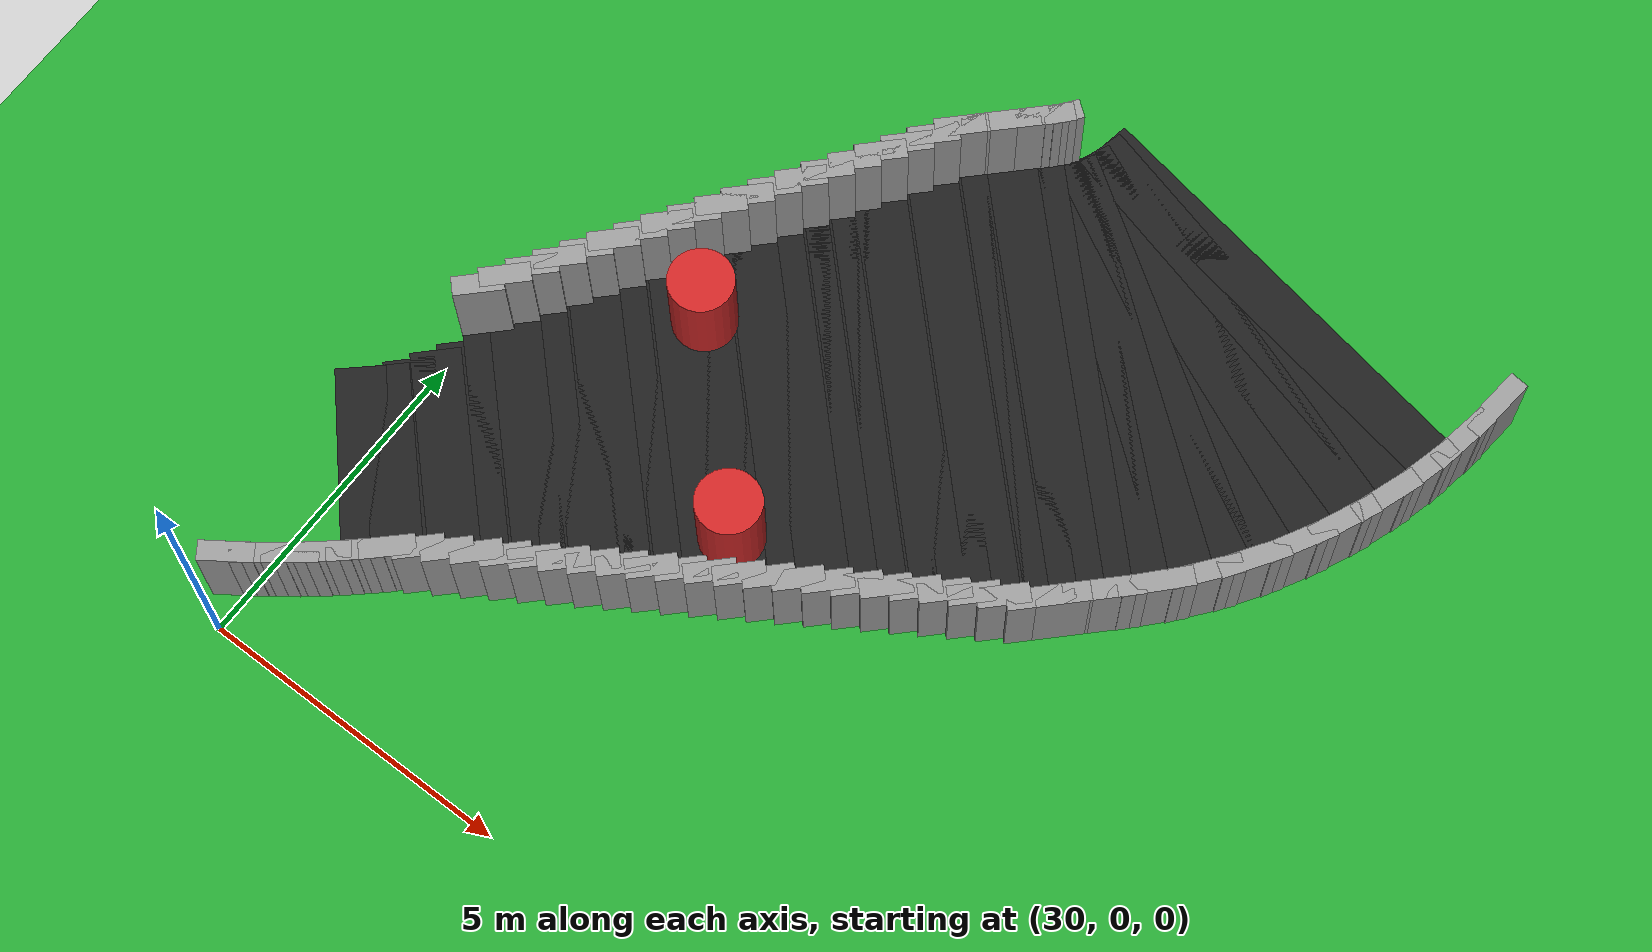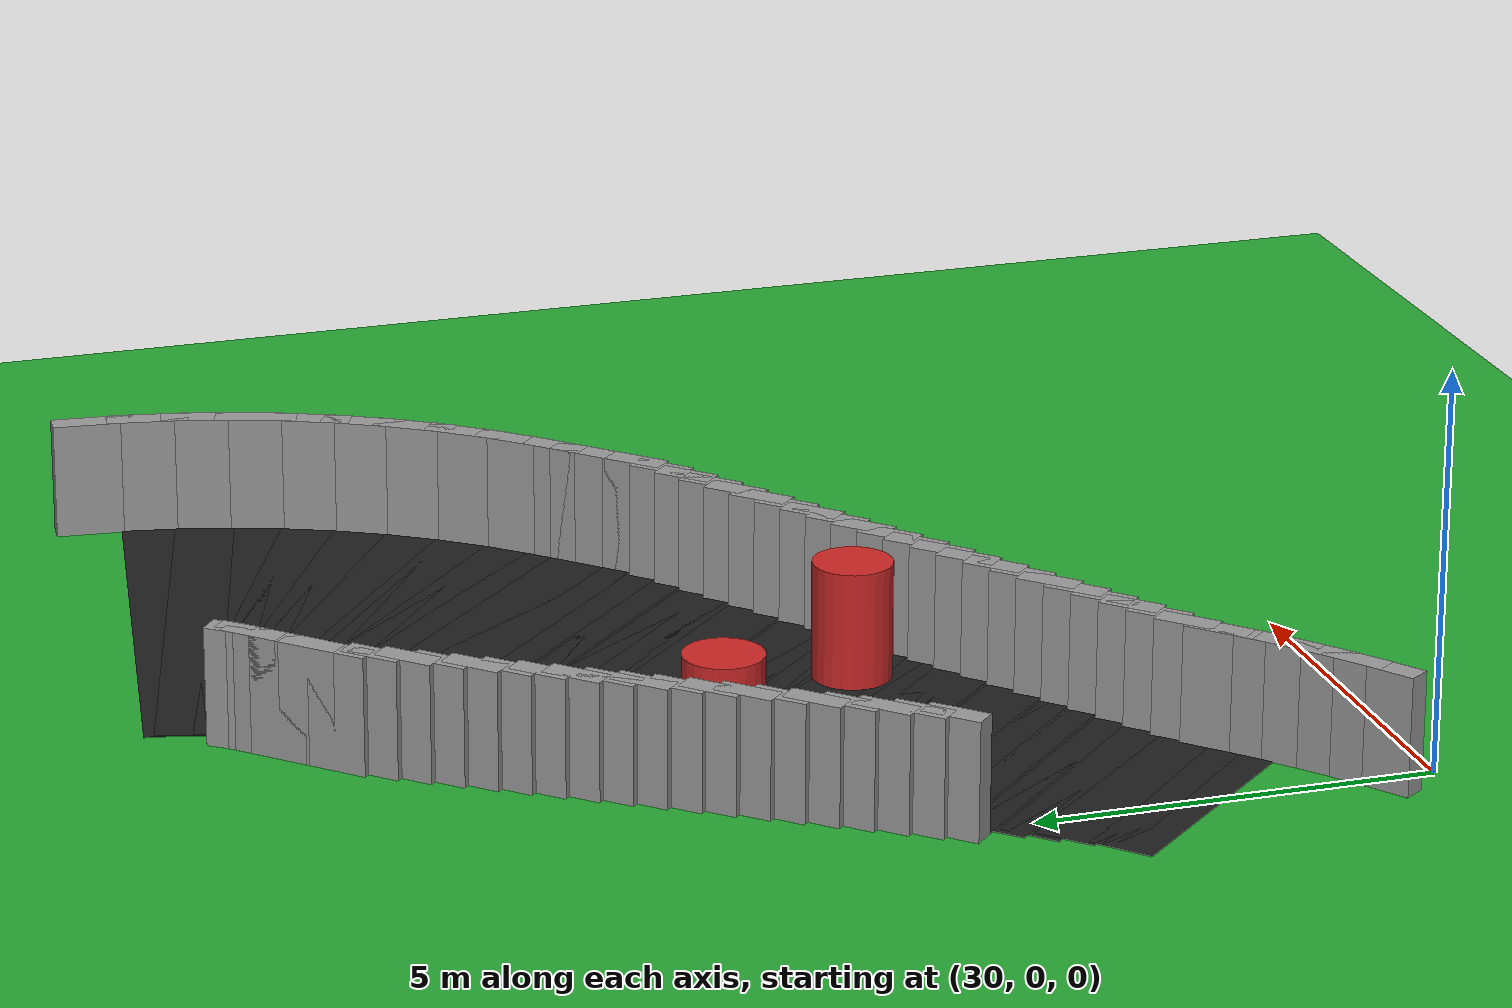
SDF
<sdf version="1.6">
 <world name="obstacle_taper">
  <include><uri>model://sun</uri></include>
  <model name="ground_plane">
   <static>true</static>
   <link name="link">
    <collision name="collision">
     <surface><friction><ode><mu>100</mu><mu2>50</mu2></ode></friction></surface>
     <geometry><plane><normal>0 0 1</normal><size>120 120</size></plane></geometry>
    </collision>
    <visual name="visual">
     <geometry><plane><normal>0 0 1</normal><size>120 120</size></plane></geometry>
     <material>
      <script><uri>file://media/materials/scripts/gazebo.material</uri><name>Gazebo/Green</name></script>
     </material>
    </visual>
   </link>
  </model>
  <model name="curbR_73">
   <static>true</static>
   <pose>29.824 0.695 0.750 0 0 0.60541</pose>
   <link name="link">
    <collision name="collision"><geometry><box><size>0.810 0.300 1.500</size></box></geometry></collision>
    <visual name="visual">
     <geometry><box><size>0.810 0.300 1.500</size></box></geometry>
     <material>
      <script><uri>file://media/materials/scripts/gazebo.material</uri><name>Gazebo/Grey</name></script>
     </material>
    </visual>
   </link>
  </model>
  <model name="curbR_74">
   <static>true</static>
   <pose>30.190 0.957 0.750 0 0 0.63814</pose>
   <link name="link">
    <collision name="collision"><geometry><box><size>0.810 0.300 1.500</size></box></geometry></collision>
    <visual name="visual">
     <geometry><box><size>0.810 0.300 1.500</size></box></geometry>
     <material>
      <script><uri>file://media/materials/scripts/gazebo.material</uri><name>Gazebo/Grey</name></script>
     </material>
    </visual>
   </link>
  </model>
  <model name="curbR_75">
   <static>true</static>
   <pose>30.547 1.231 0.750 0 0 0.67086</pose>
   <link name="link">
    <collision name="collision"><geometry><box><size>0.810 0.300 1.500</size></box></geometry></collision>
    <visual name="visual">
     <geometry><box><size>0.810 0.300 1.500</size></box></geometry>
     <material>
      <script><uri>file://media/materials/scripts/gazebo.material</uri><name>Gazebo/Grey</name></script>
     </material>
    </visual>
   </link>
  </model>
  <model name="curbR_76">
   <static>true</static>
   <pose>30.895 1.517 0.750 0 0 0.70359</pose>
   <link name="link">
    <collision name="collision"><geometry><box><size>0.810 0.300 1.500</size></box></geometry></collision>
    <visual name="visual">
     <geometry><box><size>0.810 0.300 1.500</size></box></geometry>
     <material>
      <script><uri>file://media/materials/scripts/gazebo.material</uri><name>Gazebo/Grey</name></script>
     </material>
    </visual>
   </link>
  </model>
  <model name="asphalt_77">
   <static>true</static>
   <pose>30.058 3.110 0.005 0 0 0.73631</pose>
   <link name="link">
    <visual name="visual">
     <geometry><box><size>0.753 3.200 0.010</size></box></geometry>
     <material>
      <script><uri>file://media/materials/scripts/gazebo.material</uri><name>Gazebo/Black</name></script>
     </material>
    </visual>
   </link>
  </model>
  <model name="curbR_77">
   <static>true</static>
   <pose>31.233 1.813 0.750 0 0 0.73631</pose>
   <link name="link">
    <collision name="collision"><geometry><box><size>0.810 0.300 1.500</size></box></geometry></collision>
    <visual name="visual">
     <geometry><box><size>0.810 0.300 1.500</size></box></geometry>
     <material>
      <script><uri>file://media/materials/scripts/gazebo.material</uri><name>Gazebo/Grey</name></script>
     </material>
    </visual>
   </link>
  </model>
  <model name="asphalt_78">
   <static>true</static>
   <pose>30.345 3.378 0.005 0 0 0.76904</pose>
   <link name="link">
    <visual name="visual">
     <geometry><box><size>0.753 3.200 0.010</size></box></geometry>
     <material>
      <script><uri>file://media/materials/scripts/gazebo.material</uri><name>Gazebo/Black</name></script>
     </material>
    </visual>
   </link>
  </model>
  <model name="curbR_78">
   <static>true</static>
   <pose>31.561 2.121 0.750 0 0 0.76904</pose>
   <link name="link">
    <collision name="collision"><geometry><box><size>0.810 0.300 1.500</size></box></geometry></collision>
    <visual name="visual">
     <geometry><box><size>0.810 0.300 1.500</size></box></geometry>
     <material>
      <script><uri>file://media/materials/scripts/gazebo.material</uri><name>Gazebo/Grey</name></script>
     </material>
    </visual>
   </link>
  </model>
  <model name="asphalt_79">
   <static>true</static>
   <pose>30.627 3.656 0.005 0 0 0.78540</pose>
   <link name="link">
    <visual name="visual">
     <geometry><box><size>0.760 3.299 0.010</size></box></geometry>
     <material>
      <script><uri>file://media/materials/scripts/gazebo.material</uri><name>Gazebo/Black</name></script>
     </material>
    </visual>
   </link>
  </model>
  <model name="curbR_79">
   <static>true</static>
   <pose>31.900 2.384 0.750 0 0 0.78540</pose>
   <link name="link">
    <collision name="collision"><geometry><box><size>0.760 0.300 1.500</size></box></geometry></collision>
    <visual name="visual">
     <geometry><box><size>0.760 0.300 1.500</size></box></geometry>
     <material>
      <script><uri>file://media/materials/scripts/gazebo.material</uri><name>Gazebo/Grey</name></script>
     </material>
    </visual>
   </link>
  </model>
  <model name="asphalt_80">
   <static>true</static>
   <pose>30.910 3.939 0.005 0 0 0.78540</pose>
   <link name="link">
    <visual name="visual">
     <geometry><box><size>0.760 3.476 0.010</size></box></geometry>
     <material>
      <script><uri>file://media/materials/scripts/gazebo.material</uri><name>Gazebo/Black</name></script>
     </material>
    </visual>
   </link>
  </model>
  <model name="curbR_80">
   <static>true</static>
   <pose>32.245 2.604 0.750 0 0 0.78540</pose>
   <link name="link">
    <collision name="collision"><geometry><box><size>0.760 0.300 1.500</size></box></geometry></collision>
    <visual name="visual">
     <geometry><box><size>0.760 0.300 1.500</size></box></geometry>
     <material>
      <script><uri>file://media/materials/scripts/gazebo.material</uri><name>Gazebo/Grey</name></script>
     </material>
    </visual>
   </link>
  </model>
  <model name="asphalt_81">
   <static>true</static>
   <pose>31.193 4.222 0.005 0 0 0.78540</pose>
   <link name="link">
    <visual name="visual">
     <geometry><box><size>0.760 3.653 0.010</size></box></geometry>
     <material>
      <script><uri>file://media/materials/scripts/gazebo.material</uri><name>Gazebo/Black</name></script>
     </material>
    </visual>
   </link>
  </model>
  <model name="curbR_81">
   <static>true</static>
   <pose>32.590 2.824 0.750 0 0 0.78540</pose>
   <link name="link">
    <collision name="collision"><geometry><box><size>0.760 0.300 1.500</size></box></geometry></collision>
    <visual name="visual">
     <geometry><box><size>0.760 0.300 1.500</size></box></geometry>
     <material>
      <script><uri>file://media/materials/scripts/gazebo.material</uri><name>Gazebo/Grey</name></script>
     </material>
    </visual>
   </link>
  </model>
  <model name="asphalt_82">
   <static>true</static>
   <pose>31.476 4.505 0.005 0 0 0.78540</pose>
   <link name="link">
    <visual name="visual">
     <geometry><box><size>0.760 3.830 0.010</size></box></geometry>
     <material>
      <script><uri>file://media/materials/scripts/gazebo.material</uri><name>Gazebo/Black</name></script>
     </material>
    </visual>
   </link>
  </model>
  <model name="curbL_82">
   <static>true</static>
   <pose>30.016 5.965 0.750 0 0 0.78540</pose>
   <link name="link">
    <collision name="collision"><geometry><box><size>0.760 0.300 1.500</size></box></geometry></collision>
    <visual name="visual">
     <geometry><box><size>0.760 0.300 1.500</size></box></geometry>
     <material>
      <script><uri>file://media/materials/scripts/gazebo.material</uri><name>Gazebo/Grey</name></script>
     </material>
    </visual>
   </link>
  </model>
  <model name="curbR_82">
   <static>true</static>
   <pose>32.936 3.045 0.750 0 0 0.78540</pose>
   <link name="link">
    <collision name="collision"><geometry><box><size>0.760 0.300 1.500</size></box></geometry></collision>
    <visual name="visual">
     <geometry><box><size>0.760 0.300 1.500</size></box></geometry>
     <material>
      <script><uri>file://media/materials/scripts/gazebo.material</uri><name>Gazebo/Grey</name></script>
     </material>
    </visual>
   </link>
  </model>
  <model name="asphalt_83">
   <static>true</static>
   <pose>31.758 4.788 0.005 0 0 0.78540</pose>
   <link name="link">
    <visual name="visual">
     <geometry><box><size>0.760 4.006 0.010</size></box></geometry>
     <material>
      <script><uri>file://media/materials/scripts/gazebo.material</uri><name>Gazebo/Black</name></script>
     </material>
    </visual>
   </link>
  </model>
  <model name="curbL_83">
   <static>true</static>
   <pose>30.236 6.310 0.750 0 0 0.78540</pose>
   <link name="link">
    <collision name="collision"><geometry><box><size>0.760 0.300 1.500</size></box></geometry></collision>
    <visual name="visual">
     <geometry><box><size>0.760 0.300 1.500</size></box></geometry>
     <material>
      <script><uri>file://media/materials/scripts/gazebo.material</uri><name>Gazebo/Grey</name></script>
     </material>
    </visual>
   </link>
  </model>
  <model name="curbR_83">
   <static>true</static>
   <pose>33.281 3.265 0.750 0 0 0.78540</pose>
   <link name="link">
    <collision name="collision"><geometry><box><size>0.760 0.300 1.500</size></box></geometry></collision>
    <visual name="visual">
     <geometry><box><size>0.760 0.300 1.500</size></box></geometry>
     <material>
      <script><uri>file://media/materials/scripts/gazebo.material</uri><name>Gazebo/Grey</name></script>
     </material>
    </visual>
   </link>
  </model>
  <model name="asphalt_84">
   <static>true</static>
   <pose>32.041 5.071 0.005 0 0 0.78540</pose>
   <link name="link">
    <visual name="visual">
     <geometry><box><size>0.760 4.183 0.010</size></box></geometry>
     <material>
      <script><uri>file://media/materials/scripts/gazebo.material</uri><name>Gazebo/Black</name></script>
     </material>
    </visual>
   </link>
  </model>
  <model name="curbL_84">
   <static>true</static>
   <pose>30.456 6.656 0.750 0 0 0.78540</pose>
   <link name="link">
    <collision name="collision"><geometry><box><size>0.760 0.300 1.500</size></box></geometry></collision>
    <visual name="visual">
     <geometry><box><size>0.760 0.300 1.500</size></box></geometry>
     <material>
      <script><uri>file://media/materials/scripts/gazebo.material</uri><name>Gazebo/Grey</name></script>
     </material>
    </visual>
   </link>
  </model>
  <model name="curbR_84">
   <static>true</static>
   <pose>33.626 3.486 0.750 0 0 0.78540</pose>
   <link name="link">
    <collision name="collision"><geometry><box><size>0.760 0.300 1.500</size></box></geometry></collision>
    <visual name="visual">
     <geometry><box><size>0.760 0.300 1.500</size></box></geometry>
     <material>
      <script><uri>file://media/materials/scripts/gazebo.material</uri><name>Gazebo/Grey</name></script>
     </material>
    </visual>
   </link>
  </model>
  <model name="asphalt_85">
   <static>true</static>
   <pose>32.324 5.353 0.005 0 0 0.78540</pose>
   <link name="link">
    <visual name="visual">
     <geometry><box><size>0.760 4.360 0.010</size></box></geometry>
     <material>
      <script><uri>file://media/materials/scripts/gazebo.material</uri><name>Gazebo/Black</name></script>
     </material>
    </visual>
   </link>
  </model>
  <model name="curbL_85">
   <static>true</static>
   <pose>30.677 7.001 0.750 0 0 0.78540</pose>
   <link name="link">
    <collision name="collision"><geometry><box><size>0.760 0.300 1.500</size></box></geometry></collision>
    <visual name="visual">
     <geometry><box><size>0.760 0.300 1.500</size></box></geometry>
     <material>
      <script><uri>file://media/materials/scripts/gazebo.material</uri><name>Gazebo/Grey</name></script>
     </material>
    </visual>
   </link>
  </model>
  <model name="curbR_85">
   <static>true</static>
   <pose>33.972 3.706 0.750 0 0 0.78540</pose>
   <link name="link">
    <collision name="collision"><geometry><box><size>0.760 0.300 1.500</size></box></geometry></collision>
    <visual name="visual">
     <geometry><box><size>0.760 0.300 1.500</size></box></geometry>
     <material>
      <script><uri>file://media/materials/scripts/gazebo.material</uri><name>Gazebo/Grey</name></script>
     </material>
    </visual>
   </link>
  </model>
  <model name="asphalt_86">
   <static>true</static>
   <pose>32.607 5.636 0.005 0 0 0.78540</pose>
   <link name="link">
    <visual name="visual">
     <geometry><box><size>0.760 4.537 0.010</size></box></geometry>
     <material>
      <script><uri>file://media/materials/scripts/gazebo.material</uri><name>Gazebo/Black</name></script>
     </material>
    </visual>
   </link>
  </model>
  <model name="curbL_86">
   <static>true</static>
   <pose>30.897 7.346 0.750 0 0 0.78540</pose>
   <link name="link">
    <collision name="collision"><geometry><box><size>0.760 0.300 1.500</size></box></geometry></collision>
    <visual name="visual">
     <geometry><box><size>0.760 0.300 1.500</size></box></geometry>
     <material>
      <script><uri>file://media/materials/scripts/gazebo.material</uri><name>Gazebo/Grey</name></script>
     </material>
    </visual>
   </link>
  </model>
  <model name="curbR_86">
   <static>true</static>
   <pose>34.317 3.926 0.750 0 0 0.78540</pose>
   <link name="link">
    <collision name="collision"><geometry><box><size>0.760 0.300 1.500</size></box></geometry></collision>
    <visual name="visual">
     <geometry><box><size>0.760 0.300 1.500</size></box></geometry>
     <material>
      <script><uri>file://media/materials/scripts/gazebo.material</uri><name>Gazebo/Grey</name></script>
     </material>
    </visual>
   </link>
  </model>
  <model name="asphalt_87">
   <static>true</static>
   <pose>32.890 5.919 0.005 0 0 0.78540</pose>
   <link name="link">
    <visual name="visual">
     <geometry><box><size>0.760 4.713 0.010</size></box></geometry>
     <material>
      <script><uri>file://media/materials/scripts/gazebo.material</uri><name>Gazebo/Black</name></script>
     </material>
    </visual>
   </link>
  </model>
  <model name="curbL_87">
   <static>true</static>
   <pose>31.117 7.691 0.750 0 0 0.78540</pose>
   <link name="link">
    <collision name="collision"><geometry><box><size>0.760 0.300 1.500</size></box></geometry></collision>
    <visual name="visual">
     <geometry><box><size>0.760 0.300 1.500</size></box></geometry>
     <material>
      <script><uri>file://media/materials/scripts/gazebo.material</uri><name>Gazebo/Grey</name></script>
     </material>
    </visual>
   </link>
  </model>
  <model name="curbR_87">
   <static>true</static>
   <pose>34.662 4.147 0.750 0 0 0.78540</pose>
   <link name="link">
    <collision name="collision"><geometry><box><size>0.760 0.300 1.500</size></box></geometry></collision>
    <visual name="visual">
     <geometry><box><size>0.760 0.300 1.500</size></box></geometry>
     <material>
      <script><uri>file://media/materials/scripts/gazebo.material</uri><name>Gazebo/Grey</name></script>
     </material>
    </visual>
   </link>
  </model>
  <model name="asphalt_88">
   <static>true</static>
   <pose>33.173 6.202 0.005 0 0 0.78540</pose>
   <link name="link">
    <visual name="visual">
     <geometry><box><size>0.760 4.890 0.010</size></box></geometry>
     <material>
      <script><uri>file://media/materials/scripts/gazebo.material</uri><name>Gazebo/Black</name></script>
     </material>
    </visual>
   </link>
  </model>
  <model name="curbL_88">
   <static>true</static>
   <pose>31.338 8.037 0.750 0 0 0.78540</pose>
   <link name="link">
    <collision name="collision"><geometry><box><size>0.760 0.300 1.500</size></box></geometry></collision>
    <visual name="visual">
     <geometry><box><size>0.760 0.300 1.500</size></box></geometry>
     <material>
      <script><uri>file://media/materials/scripts/gazebo.material</uri><name>Gazebo/Grey</name></script>
     </material>
    </visual>
   </link>
  </model>
  <model name="curbR_88">
   <static>true</static>
   <pose>35.008 4.367 0.750 0 0 0.78540</pose>
   <link name="link">
    <collision name="collision"><geometry><box><size>0.760 0.300 1.500</size></box></geometry></collision>
    <visual name="visual">
     <geometry><box><size>0.760 0.300 1.500</size></box></geometry>
     <material>
      <script><uri>file://media/materials/scripts/gazebo.material</uri><name>Gazebo/Grey</name></script>
     </material>
    </visual>
   </link>
  </model>
  <model name="asphalt_89">
   <static>true</static>
   <pose>33.456 6.485 0.005 0 0 0.78540</pose>
   <link name="link">
    <visual name="visual">
     <geometry><box><size>0.760 5.067 0.010</size></box></geometry>
     <material>
      <script><uri>file://media/materials/scripts/gazebo.material</uri><name>Gazebo/Black</name></script>
     </material>
    </visual>
   </link>
  </model>
  <model name="curbL_89">
   <static>true</static>
   <pose>31.558 8.382 0.750 0 0 0.78540</pose>
   <link name="link">
    <collision name="collision"><geometry><box><size>0.760 0.300 1.500</size></box></geometry></collision>
    <visual name="visual">
     <geometry><box><size>0.760 0.300 1.500</size></box></geometry>
     <material>
      <script><uri>file://media/materials/scripts/gazebo.material</uri><name>Gazebo/Grey</name></script>
     </material>
    </visual>
   </link>
  </model>
  <model name="curbR_89">
   <static>true</static>
   <pose>35.353 4.587 0.750 0 0 0.78540</pose>
   <link name="link">
    <collision name="collision"><geometry><box><size>0.760 0.300 1.500</size></box></geometry></collision>
    <visual name="visual">
     <geometry><box><size>0.760 0.300 1.500</size></box></geometry>
     <material>
      <script><uri>file://media/materials/scripts/gazebo.material</uri><name>Gazebo/Grey</name></script>
     </material>
    </visual>
   </link>
  </model>
  <model name="asphalt_90">
   <static>true</static>
   <pose>33.738 6.768 0.005 0 0 0.78540</pose>
   <link name="link">
    <visual name="visual">
     <geometry><box><size>0.760 5.244 0.010</size></box></geometry>
     <material>
      <script><uri>file://media/materials/scripts/gazebo.material</uri><name>Gazebo/Black</name></script>
     </material>
    </visual>
   </link>
  </model>
  <model name="curbL_90">
   <static>true</static>
   <pose>31.778 8.727 0.750 0 0 0.78540</pose>
   <link name="link">
    <collision name="collision"><geometry><box><size>0.760 0.300 1.500</size></box></geometry></collision>
    <visual name="visual">
     <geometry><box><size>0.760 0.300 1.500</size></box></geometry>
     <material>
      <script><uri>file://media/materials/scripts/gazebo.material</uri><name>Gazebo/Grey</name></script>
     </material>
    </visual>
   </link>
  </model>
  <model name="curbR_90">
   <static>true</static>
   <pose>35.698 4.808 0.750 0 0 0.78540</pose>
   <link name="link">
    <collision name="collision"><geometry><box><size>0.760 0.300 1.500</size></box></geometry></collision>
    <visual name="visual">
     <geometry><box><size>0.760 0.300 1.500</size></box></geometry>
     <material>
      <script><uri>file://media/materials/scripts/gazebo.material</uri><name>Gazebo/Grey</name></script>
     </material>
    </visual>
   </link>
  </model>
  <model name="asphalt_91">
   <static>true</static>
   <pose>34.021 7.050 0.005 0 0 0.78540</pose>
   <link name="link">
    <visual name="visual">
     <geometry><box><size>0.760 5.420 0.010</size></box></geometry>
     <material>
      <script><uri>file://media/materials/scripts/gazebo.material</uri><name>Gazebo/Black</name></script>
     </material>
    </visual>
   </link>
  </model>
  <model name="curbL_91">
   <static>true</static>
   <pose>31.999 9.073 0.750 0 0 0.78540</pose>
   <link name="link">
    <collision name="collision"><geometry><box><size>0.760 0.300 1.500</size></box></geometry></collision>
    <visual name="visual">
     <geometry><box><size>0.760 0.300 1.500</size></box></geometry>
     <material>
      <script><uri>file://media/materials/scripts/gazebo.material</uri><name>Gazebo/Grey</name></script>
     </material>
    </visual>
   </link>
  </model>
  <model name="curbR_91">
   <static>true</static>
   <pose>36.044 5.028 0.750 0 0 0.78540</pose>
   <link name="link">
    <collision name="collision"><geometry><box><size>0.760 0.300 1.500</size></box></geometry></collision>
    <visual name="visual">
     <geometry><box><size>0.760 0.300 1.500</size></box></geometry>
     <material>
      <script><uri>file://media/materials/scripts/gazebo.material</uri><name>Gazebo/Grey</name></script>
     </material>
    </visual>
   </link>
  </model>
  <model name="asphalt_92">
   <static>true</static>
   <pose>34.304 7.333 0.005 0 0 0.78540</pose>
   <link name="link">
    <visual name="visual">
     <geometry><box><size>0.760 5.597 0.010</size></box></geometry>
     <material>
      <script><uri>file://media/materials/scripts/gazebo.material</uri><name>Gazebo/Black</name></script>
     </material>
    </visual>
   </link>
  </model>
  <model name="curbL_92">
   <static>true</static>
   <pose>32.219 9.418 0.750 0 0 0.78540</pose>
   <link name="link">
    <collision name="collision"><geometry><box><size>0.760 0.300 1.500</size></box></geometry></collision>
    <visual name="visual">
     <geometry><box><size>0.760 0.300 1.500</size></box></geometry>
     <material>
      <script><uri>file://media/materials/scripts/gazebo.material</uri><name>Gazebo/Grey</name></script>
     </material>
    </visual>
   </link>
  </model>
  <model name="curbR_92">
   <static>true</static>
   <pose>36.389 5.248 0.750 0 0 0.78540</pose>
   <link name="link">
    <collision name="collision"><geometry><box><size>0.760 0.300 1.500</size></box></geometry></collision>
    <visual name="visual">
     <geometry><box><size>0.760 0.300 1.500</size></box></geometry>
     <material>
      <script><uri>file://media/materials/scripts/gazebo.material</uri><name>Gazebo/Grey</name></script>
     </material>
    </visual>
   </link>
  </model>
  <model name="asphalt_93">
   <static>true</static>
   <pose>34.587 7.616 0.005 0 0 0.78540</pose>
   <link name="link">
    <visual name="visual">
     <geometry><box><size>0.760 5.774 0.010</size></box></geometry>
     <material>
      <script><uri>file://media/materials/scripts/gazebo.material</uri><name>Gazebo/Black</name></script>
     </material>
    </visual>
   </link>
  </model>
  <model name="curbL_93">
   <static>true</static>
   <pose>32.439 9.763 0.750 0 0 0.78540</pose>
   <link name="link">
    <collision name="collision"><geometry><box><size>0.760 0.300 1.500</size></box></geometry></collision>
    <visual name="visual">
     <geometry><box><size>0.760 0.300 1.500</size></box></geometry>
     <material>
      <script><uri>file://media/materials/scripts/gazebo.material</uri><name>Gazebo/Grey</name></script>
     </material>
    </visual>
   </link>
  </model>
  <model name="curbR_93">
   <static>true</static>
   <pose>36.734 5.469 0.750 0 0 0.78540</pose>
   <link name="link">
    <collision name="collision"><geometry><box><size>0.760 0.300 1.500</size></box></geometry></collision>
    <visual name="visual">
     <geometry><box><size>0.760 0.300 1.500</size></box></geometry>
     <material>
      <script><uri>file://media/materials/scripts/gazebo.material</uri><name>Gazebo/Grey</name></script>
     </material>
    </visual>
   </link>
  </model>
  <model name="asphalt_94">
   <static>true</static>
   <pose>34.870 7.899 0.005 0 0 0.78540</pose>
   <link name="link">
    <visual name="visual">
     <geometry><box><size>0.760 5.950 0.010</size></box></geometry>
     <material>
      <script><uri>file://media/materials/scripts/gazebo.material</uri><name>Gazebo/Black</name></script>
     </material>
    </visual>
   </link>
  </model>
  <model name="curbL_94">
   <static>true</static>
   <pose>32.660 10.109 0.750 0 0 0.78540</pose>
   <link name="link">
    <collision name="collision"><geometry><box><size>0.760 0.300 1.500</size></box></geometry></collision>
    <visual name="visual">
     <geometry><box><size>0.760 0.300 1.500</size></box></geometry>
     <material>
      <script><uri>file://media/materials/scripts/gazebo.material</uri><name>Gazebo/Grey</name></script>
     </material>
    </visual>
   </link>
  </model>
  <model name="curbR_94">
   <static>true</static>
   <pose>37.080 5.689 0.750 0 0 0.78540</pose>
   <link name="link">
    <collision name="collision"><geometry><box><size>0.760 0.300 1.500</size></box></geometry></collision>
    <visual name="visual">
     <geometry><box><size>0.760 0.300 1.500</size></box></geometry>
     <material>
      <script><uri>file://media/materials/scripts/gazebo.material</uri><name>Gazebo/Grey</name></script>
     </material>
    </visual>
   </link>
  </model>
  <model name="asphalt_95">
   <static>true</static>
   <pose>35.153 8.182 0.005 0 0 0.78540</pose>
   <link name="link">
    <visual name="visual">
     <geometry><box><size>0.760 6.127 0.010</size></box></geometry>
     <material>
      <script><uri>file://media/materials/scripts/gazebo.material</uri><name>Gazebo/Black</name></script>
     </material>
    </visual>
   </link>
  </model>
  <model name="curbL_95">
   <static>true</static>
   <pose>32.880 10.454 0.750 0 0 0.78540</pose>
   <link name="link">
    <collision name="collision"><geometry><box><size>0.760 0.300 1.500</size></box></geometry></collision>
    <visual name="visual">
     <geometry><box><size>0.760 0.300 1.500</size></box></geometry>
     <material>
      <script><uri>file://media/materials/scripts/gazebo.material</uri><name>Gazebo/Grey</name></script>
     </material>
    </visual>
   </link>
  </model>
  <model name="curbR_95">
   <static>true</static>
   <pose>37.425 5.909 0.750 0 0 0.78540</pose>
   <link name="link">
    <collision name="collision"><geometry><box><size>0.760 0.300 1.500</size></box></geometry></collision>
    <visual name="visual">
     <geometry><box><size>0.760 0.300 1.500</size></box></geometry>
     <material>
      <script><uri>file://media/materials/scripts/gazebo.material</uri><name>Gazebo/Grey</name></script>
     </material>
    </visual>
   </link>
  </model>
  <model name="asphalt_96">
   <static>true</static>
   <pose>35.435 8.465 0.005 0 0 0.78540</pose>
   <link name="link">
    <visual name="visual">
     <geometry><box><size>0.760 6.304 0.010</size></box></geometry>
     <material>
      <script><uri>file://media/materials/scripts/gazebo.material</uri><name>Gazebo/Black</name></script>
     </material>
    </visual>
   </link>
  </model>
  <model name="curbL_96">
   <static>true</static>
   <pose>33.101 10.799 0.750 0 0 0.78540</pose>
   <link name="link">
    <collision name="collision"><geometry><box><size>0.760 0.300 1.500</size></box></geometry></collision>
    <visual name="visual">
     <geometry><box><size>0.760 0.300 1.500</size></box></geometry>
     <material>
      <script><uri>file://media/materials/scripts/gazebo.material</uri><name>Gazebo/Grey</name></script>
     </material>
    </visual>
   </link>
  </model>
  <model name="curbR_96">
   <static>true</static>
   <pose>37.770 6.130 0.750 0 0 0.78540</pose>
   <link name="link">
    <collision name="collision"><geometry><box><size>0.760 0.300 1.500</size></box></geometry></collision>
    <visual name="visual">
     <geometry><box><size>0.760 0.300 1.500</size></box></geometry>
     <material>
      <script><uri>file://media/materials/scripts/gazebo.material</uri><name>Gazebo/Grey</name></script>
     </material>
    </visual>
   </link>
  </model>
  <model name="asphalt_97">
   <static>true</static>
   <pose>35.718 8.747 0.005 0 0 0.78540</pose>
   <link name="link">
    <visual name="visual">
     <geometry><box><size>0.760 6.481 0.010</size></box></geometry>
     <material>
      <script><uri>file://media/materials/scripts/gazebo.material</uri><name>Gazebo/Black</name></script>
     </material>
    </visual>
   </link>
  </model>
  <model name="curbL_97">
   <static>true</static>
   <pose>33.321 11.145 0.750 0 0 0.78540</pose>
   <link name="link">
    <collision name="collision"><geometry><box><size>0.760 0.300 1.500</size></box></geometry></collision>
    <visual name="visual">
     <geometry><box><size>0.760 0.300 1.500</size></box></geometry>
     <material>
      <script><uri>file://media/materials/scripts/gazebo.material</uri><name>Gazebo/Grey</name></script>
     </material>
    </visual>
   </link>
  </model>
  <model name="curbR_97">
   <static>true</static>
   <pose>38.116 6.350 0.750 0 0 0.78540</pose>
   <link name="link">
    <collision name="collision"><geometry><box><size>0.760 0.300 1.500</size></box></geometry></collision>
    <visual name="visual">
     <geometry><box><size>0.760 0.300 1.500</size></box></geometry>
     <material>
      <script><uri>file://media/materials/scripts/gazebo.material</uri><name>Gazebo/Grey</name></script>
     </material>
    </visual>
   </link>
  </model>
  <model name="asphalt_98">
   <static>true</static>
   <pose>36.001 9.030 0.005 0 0 0.78540</pose>
   <link name="link">
    <visual name="visual">
     <geometry><box><size>0.760 6.657 0.010</size></box></geometry>
     <material>
      <script><uri>file://media/materials/scripts/gazebo.material</uri><name>Gazebo/Black</name></script>
     </material>
    </visual>
   </link>
  </model>
  <model name="curbL_98">
   <static>true</static>
   <pose>33.541 11.490 0.750 0 0 0.78540</pose>
   <link name="link">
    <collision name="collision"><geometry><box><size>0.760 0.300 1.500</size></box></geometry></collision>
    <visual name="visual">
     <geometry><box><size>0.760 0.300 1.500</size></box></geometry>
     <material>
      <script><uri>file://media/materials/scripts/gazebo.material</uri><name>Gazebo/Grey</name></script>
     </material>
    </visual>
   </link>
  </model>
  <model name="curbR_98">
   <static>true</static>
   <pose>38.461 6.570 0.750 0 0 0.78540</pose>
   <link name="link">
    <collision name="collision"><geometry><box><size>0.760 0.300 1.500</size></box></geometry></collision>
    <visual name="visual">
     <geometry><box><size>0.760 0.300 1.500</size></box></geometry>
     <material>
      <script><uri>file://media/materials/scripts/gazebo.material</uri><name>Gazebo/Grey</name></script>
     </material>
    </visual>
   </link>
  </model>
  <model name="asphalt_99">
   <static>true</static>
   <pose>36.284 9.313 0.005 0 0 0.78540</pose>
   <link name="link">
    <visual name="visual">
     <geometry><box><size>0.760 6.834 0.010</size></box></geometry>
     <material>
      <script><uri>file://media/materials/scripts/gazebo.material</uri><name>Gazebo/Black</name></script>
     </material>
    </visual>
   </link>
  </model>
  <model name="curbL_99">
   <static>true</static>
   <pose>33.762 11.835 0.750 0 0 0.78540</pose>
   <link name="link">
    <collision name="collision"><geometry><box><size>0.760 0.300 1.500</size></box></geometry></collision>
    <visual name="visual">
     <geometry><box><size>0.760 0.300 1.500</size></box></geometry>
     <material>
      <script><uri>file://media/materials/scripts/gazebo.material</uri><name>Gazebo/Grey</name></script>
     </material>
    </visual>
   </link>
  </model>
  <model name="curbR_99">
   <static>true</static>
   <pose>38.806 6.791 0.750 0 0 0.78540</pose>
   <link name="link">
    <collision name="collision"><geometry><box><size>0.760 0.300 1.500</size></box></geometry></collision>
    <visual name="visual">
     <geometry><box><size>0.760 0.300 1.500</size></box></geometry>
     <material>
      <script><uri>file://media/materials/scripts/gazebo.material</uri><name>Gazebo/Grey</name></script>
     </material>
    </visual>
   </link>
  </model>
  <model name="asphalt_100">
   <static>true</static>
   <pose>36.567 9.596 0.005 0 0 0.78540</pose>
   <link name="link">
    <visual name="visual">
     <geometry><box><size>0.760 7.000 0.010</size></box></geometry>
     <material>
      <script><uri>file://media/materials/scripts/gazebo.material</uri><name>Gazebo/Black</name></script>
     </material>
    </visual>
   </link>
  </model>
  <model name="curbL_100">
   <static>true</static>
   <pose>33.986 12.177 0.750 0 0 0.78540</pose>
   <link name="link">
    <collision name="collision"><geometry><box><size>0.760 0.300 1.500</size></box></geometry></collision>
    <visual name="visual">
     <geometry><box><size>0.760 0.300 1.500</size></box></geometry>
     <material>
      <script><uri>file://media/materials/scripts/gazebo.material</uri><name>Gazebo/Grey</name></script>
     </material>
    </visual>
   </link>
  </model>
  <model name="curbR_100">
   <static>true</static>
   <pose>39.148 7.015 0.750 0 0 0.78540</pose>
   <link name="link">
    <collision name="collision"><geometry><box><size>0.760 0.300 1.500</size></box></geometry></collision>
    <visual name="visual">
     <geometry><box><size>0.760 0.300 1.500</size></box></geometry>
     <material>
      <script><uri>file://media/materials/scripts/gazebo.material</uri><name>Gazebo/Grey</name></script>
     </material>
    </visual>
   </link>
  </model>
  <model name="asphalt_101">
   <static>true</static>
   <pose>36.850 9.879 0.005 0 0 0.78540</pose>
   <link name="link">
    <visual name="visual">
     <geometry><box><size>0.760 7.000 0.010</size></box></geometry>
     <material>
      <script><uri>file://media/materials/scripts/gazebo.material</uri><name>Gazebo/Black</name></script>
     </material>
    </visual>
   </link>
  </model>
  <model name="curbL_101">
   <static>true</static>
   <pose>34.269 12.460 0.750 0 0 0.78540</pose>
   <link name="link">
    <collision name="collision"><geometry><box><size>0.760 0.300 1.500</size></box></geometry></collision>
    <visual name="visual">
     <geometry><box><size>0.760 0.300 1.500</size></box></geometry>
     <material>
      <script><uri>file://media/materials/scripts/gazebo.material</uri><name>Gazebo/Grey</name></script>
     </material>
    </visual>
   </link>
  </model>
  <model name="curbR_101">
   <static>true</static>
   <pose>39.431 7.298 0.750 0 0 0.78540</pose>
   <link name="link">
    <collision name="collision"><geometry><box><size>0.760 0.300 1.500</size></box></geometry></collision>
    <visual name="visual">
     <geometry><box><size>0.760 0.300 1.500</size></box></geometry>
     <material>
      <script><uri>file://media/materials/scripts/gazebo.material</uri><name>Gazebo/Grey</name></script>
     </material>
    </visual>
   </link>
  </model>
  <model name="asphalt_102">
   <static>true</static>
   <pose>37.132 10.162 0.005 0 0 0.78540</pose>
   <link name="link">
    <visual name="visual">
     <geometry><box><size>0.760 7.000 0.010</size></box></geometry>
     <material>
      <script><uri>file://media/materials/scripts/gazebo.material</uri><name>Gazebo/Black</name></script>
     </material>
    </visual>
   </link>
  </model>
  <model name="curbL_102">
   <static>true</static>
   <pose>34.552 12.743 0.750 0 0 0.78540</pose>
   <link name="link">
    <collision name="collision"><geometry><box><size>0.760 0.300 1.500</size></box></geometry></collision>
    <visual name="visual">
     <geometry><box><size>0.760 0.300 1.500</size></box></geometry>
     <material>
      <script><uri>file://media/materials/scripts/gazebo.material</uri><name>Gazebo/Grey</name></script>
     </material>
    </visual>
   </link>
  </model>
  <model name="curbR_102">
   <static>true</static>
   <pose>39.713 7.581 0.750 0 0 0.78540</pose>
   <link name="link">
    <collision name="collision"><geometry><box><size>0.760 0.300 1.500</size></box></geometry></collision>
    <visual name="visual">
     <geometry><box><size>0.760 0.300 1.500</size></box></geometry>
     <material>
      <script><uri>file://media/materials/scripts/gazebo.material</uri><name>Gazebo/Grey</name></script>
     </material>
    </visual>
   </link>
  </model>
  <model name="asphalt_103">
   <static>true</static>
   <pose>37.415 10.445 0.005 0 0 0.78540</pose>
   <link name="link">
    <visual name="visual">
     <geometry><box><size>0.760 7.000 0.010</size></box></geometry>
     <material>
      <script><uri>file://media/materials/scripts/gazebo.material</uri><name>Gazebo/Black</name></script>
     </material>
    </visual>
   </link>
  </model>
  <model name="curbL_103">
   <static>true</static>
   <pose>34.834 13.025 0.750 0 0 0.78540</pose>
   <link name="link">
    <collision name="collision"><geometry><box><size>0.760 0.300 1.500</size></box></geometry></collision>
    <visual name="visual">
     <geometry><box><size>0.760 0.300 1.500</size></box></geometry>
     <material>
      <script><uri>file://media/materials/scripts/gazebo.material</uri><name>Gazebo/Grey</name></script>
     </material>
    </visual>
   </link>
  </model>
  <model name="curbR_103">
   <static>true</static>
   <pose>39.996 7.864 0.750 0 0 0.78540</pose>
   <link name="link">
    <collision name="collision"><geometry><box><size>0.760 0.300 1.500</size></box></geometry></collision>
    <visual name="visual">
     <geometry><box><size>0.760 0.300 1.500</size></box></geometry>
     <material>
      <script><uri>file://media/materials/scripts/gazebo.material</uri><name>Gazebo/Grey</name></script>
     </material>
    </visual>
   </link>
  </model>
  <model name="asphalt_104">
   <static>true</static>
   <pose>37.694 10.735 0.005 0 0 0.82602</pose>
   <link name="link">
    <visual name="visual">
     <geometry><box><size>0.766 7.000 0.010</size></box></geometry>
     <material>
      <script><uri>file://media/materials/scripts/gazebo.material</uri><name>Gazebo/Black</name></script>
     </material>
    </visual>
   </link>
  </model>
  <model name="curbL_104">
   <static>true</static>
   <pose>35.013 13.207 0.750 0 0 0.82602</pose>
   <link name="link">
    <collision name="collision"><geometry><box><size>0.470 0.300 1.500</size></box></geometry></collision>
    <visual name="visual">
     <geometry><box><size>0.470 0.300 1.500</size></box></geometry>
     <material>
      <script><uri>file://media/materials/scripts/gazebo.material</uri><name>Gazebo/Grey</name></script>
     </material>
    </visual>
   </link>
  </model>
  <model name="curbR_104">
   <static>true</static>
   <pose>40.376 8.263 0.750 0 0 0.82602</pose>
   <link name="link">
    <collision name="collision"><geometry><box><size>1.063 0.300 1.500</size></box></geometry></collision>
    <visual name="visual">
     <geometry><box><size>1.063 0.300 1.500</size></box></geometry>
     <material>
      <script><uri>file://media/materials/scripts/gazebo.material</uri><name>Gazebo/Grey</name></script>
     </material>
    </visual>
   </link>
  </model>
  <model name="asphalt_105">
   <static>true</static>
   <pose>37.957 11.045 0.005 0 0 0.90727</pose>
   <link name="link">
    <visual name="visual">
     <geometry><box><size>0.766 7.000 0.010</size></box></geometry>
     <material>
      <script><uri>file://media/materials/scripts/gazebo.material</uri><name>Gazebo/Black</name></script>
     </material>
    </visual>
   </link>
  </model>
  <model name="curbL_105">
   <static>true</static>
   <pose>35.084 13.291 0.750 0 0 0.90727</pose>
   <link name="link">
    <collision name="collision"><geometry><box><size>0.470 0.300 1.500</size></box></geometry></collision>
    <visual name="visual">
     <geometry><box><size>0.470 0.300 1.500</size></box></geometry>
     <material>
      <script><uri>file://media/materials/scripts/gazebo.material</uri><name>Gazebo/Grey</name></script>
     </material>
    </visual>
   </link>
  </model>
  <model name="curbR_105">
   <static>true</static>
   <pose>40.830 8.798 0.750 0 0 0.90727</pose>
   <link name="link">
    <collision name="collision"><geometry><box><size>1.063 0.300 1.500</size></box></geometry></collision>
    <visual name="visual">
     <geometry><box><size>1.063 0.300 1.500</size></box></geometry>
     <material>
      <script><uri>file://media/materials/scripts/gazebo.material</uri><name>Gazebo/Grey</name></script>
     </material>
    </visual>
   </link>
  </model>
  <model name="asphalt_106">
   <static>true</static>
   <pose>38.194 11.374 0.005 0 0 0.98852</pose>
   <link name="link">
    <visual name="visual">
     <geometry><box><size>0.766 7.000 0.010</size></box></geometry>
     <material>
      <script><uri>file://media/materials/scripts/gazebo.material</uri><name>Gazebo/Black</name></script>
     </material>
    </visual>
   </link>
  </model>
  <model name="curbR_106">
   <static>true</static>
   <pose>41.240 9.369 0.750 0 0 0.98852</pose>
   <link name="link">
    <collision name="collision"><geometry><box><size>1.063 0.300 1.500</size></box></geometry></collision>
    <visual name="visual">
     <geometry><box><size>1.063 0.300 1.500</size></box></geometry>
     <material>
      <script><uri>file://media/materials/scripts/gazebo.material</uri><name>Gazebo/Grey</name></script>
     </material>
    </visual>
   </link>
  </model>
  <model name="asphalt_107">
   <static>true</static>
   <pose>38.403 11.722 0.005 0 0 1.06977</pose>
   <link name="link">
    <visual name="visual">
     <geometry><box><size>0.766 7.000 0.010</size></box></geometry>
     <material>
      <script><uri>file://media/materials/scripts/gazebo.material</uri><name>Gazebo/Black</name></script>
     </material>
    </visual>
   </link>
  </model>
  <model name="curbR_107">
   <static>true</static>
   <pose>41.602 9.970 0.750 0 0 1.06977</pose>
   <link name="link">
    <collision name="collision"><geometry><box><size>1.063 0.300 1.500</size></box></geometry></collision>
    <visual name="visual">
     <geometry><box><size>1.063 0.300 1.500</size></box></geometry>
     <material>
      <script><uri>file://media/materials/scripts/gazebo.material</uri><name>Gazebo/Grey</name></script>
     </material>
    </visual>
   </link>
  </model>
  <model name="asphalt_108">
   <static>true</static>
   <pose>38.584 12.086 0.005 0 0 1.15101</pose>
   <link name="link">
    <visual name="visual">
     <geometry><box><size>0.766 7.000 0.010</size></box></geometry>
     <material>
      <script><uri>file://media/materials/scripts/gazebo.material</uri><name>Gazebo/Black</name></script>
     </material>
    </visual>
   </link>
  </model>
  <model name="curbR_108">
   <static>true</static>
   <pose>41.914 10.599 0.750 0 0 1.15101</pose>
   <link name="link">
    <collision name="collision"><geometry><box><size>1.063 0.300 1.500</size></box></geometry></collision>
    <visual name="visual">
     <geometry><box><size>1.063 0.300 1.500</size></box></geometry>
     <material>
      <script><uri>file://media/materials/scripts/gazebo.material</uri><name>Gazebo/Grey</name></script>
     </material>
    </visual>
   </link>
  </model>
  <model name="asphalt_109">
   <static>true</static>
   <pose>38.734 12.463 0.005 0 0 1.23226</pose>
   <link name="link">
    <visual name="visual">
     <geometry><box><size>0.766 7.000 0.010</size></box></geometry>
     <material>
      <script><uri>file://media/materials/scripts/gazebo.material</uri><name>Gazebo/Black</name></script>
     </material>
    </visual>
   </link>
  </model>
  <model name="curbR_109">
   <static>true</static>
   <pose>42.174 11.252 0.750 0 0 1.23226</pose>
   <link name="link">
    <collision name="collision"><geometry><box><size>1.063 0.300 1.500</size></box></geometry></collision>
    <visual name="visual">
     <geometry><box><size>1.063 0.300 1.500</size></box></geometry>
     <material>
      <script><uri>file://media/materials/scripts/gazebo.material</uri><name>Gazebo/Grey</name></script>
     </material>
    </visual>
   </link>
  </model>
  <model name="asphalt_110">
   <static>true</static>
   <pose>38.853 12.851 0.005 0 0 1.31351</pose>
   <link name="link">
    <visual name="visual">
     <geometry><box><size>0.766 7.000 0.010</size></box></geometry>
     <material>
      <script><uri>file://media/materials/scripts/gazebo.material</uri><name>Gazebo/Black</name></script>
     </material>
    </visual>
   </link>
  </model>
  <model name="curbR_110">
   <static>true</static>
   <pose>42.380 11.923 0.750 0 0 1.31351</pose>
   <link name="link">
    <collision name="collision"><geometry><box><size>1.063 0.300 1.500</size></box></geometry></collision>
    <visual name="visual">
     <geometry><box><size>1.063 0.300 1.500</size></box></geometry>
     <material>
      <script><uri>file://media/materials/scripts/gazebo.material</uri><name>Gazebo/Grey</name></script>
     </material>
    </visual>
   </link>
  </model>
  <model name="asphalt_111">
   <static>true</static>
   <pose>38.940 13.247 0.005 0 0 1.39476</pose>
   <link name="link">
    <visual name="visual">
     <geometry><box><size>0.766 7.000 0.010</size></box></geometry>
     <material>
      <script><uri>file://media/materials/scripts/gazebo.material</uri><name>Gazebo/Black</name></script>
     </material>
    </visual>
   </link>
  </model>
  <model name="curbR_111">
   <static>true</static>
   <pose>42.531 12.609 0.750 0 0 1.39476</pose>
   <link name="link">
    <collision name="collision"><geometry><box><size>1.063 0.300 1.500</size></box></geometry></collision>
    <visual name="visual">
     <geometry><box><size>1.063 0.300 1.500</size></box></geometry>
     <material>
      <script><uri>file://media/materials/scripts/gazebo.material</uri><name>Gazebo/Grey</name></script>
     </material>
    </visual>
   </link>
  </model>
  <model name="curbR_112">
   <static>true</static>
   <pose>42.626 13.304 0.750 0 0 1.47601</pose>
   <link name="link">
    <collision name="collision"><geometry><box><size>1.063 0.300 1.500</size></box></geometry></collision>
    <visual name="visual">
     <geometry><box><size>1.063 0.300 1.500</size></box></geometry>
     <material>
      <script><uri>file://media/materials/scripts/gazebo.material</uri><name>Gazebo/Grey</name></script>
     </material>
    </visual>
   </link>
  </model>
  <model name="obs_1">
   <static>true</static>
   <pose>34.923 5.548 0.750 0 0 0</pose>
   <link name="link">
    <collision name="collision">
     <geometry><cylinder><radius>0.500</radius><length>1.500</length></cylinder></geometry>
    </collision>
    <visual name="visual">
     <geometry><cylinder><radius>0.500</radius><length>1.500</length></cylinder></geometry>
     <material>
      <script><uri>file://media/materials/scripts/gazebo.material</uri><name>Gazebo/Red</name></script>
     </material>
    </visual>
   </link>
  </model>
  <model name="obs_2">
   <static>true</static>
   <pose>32.519 7.952 0.750 0 0 0</pose>
   <link name="link">
    <collision name="collision">
     <geometry><cylinder><radius>0.500</radius><length>1.500</length></cylinder></geometry>
    </collision>
    <visual name="visual">
     <geometry><cylinder><radius>0.500</radius><length>1.500</length></cylinder></geometry>
     <material>
      <script><uri>file://media/materials/scripts/gazebo.material</uri><name>Gazebo/Red</name></script>
     </material>
    </visual>
   </link>
  </model>
 </world>
</sdf>
